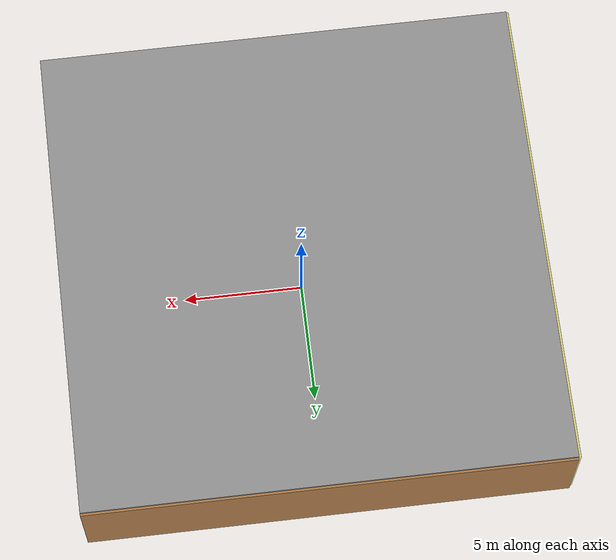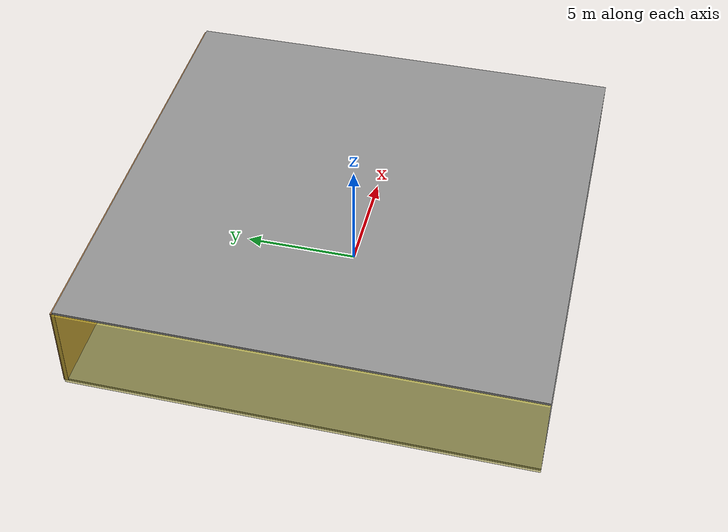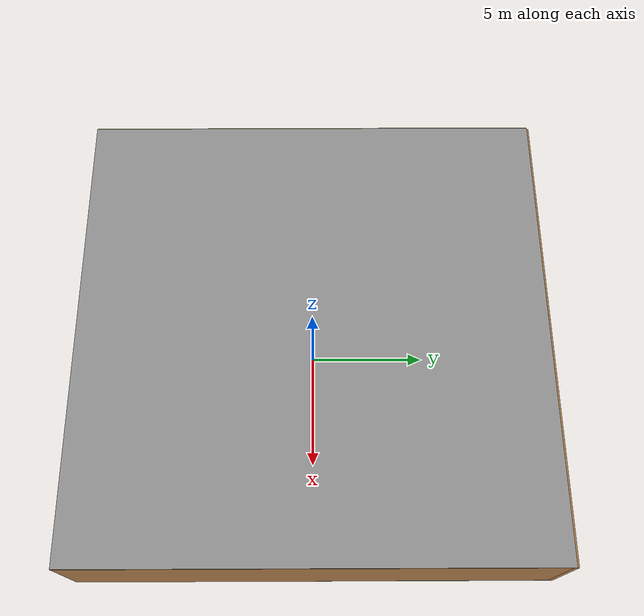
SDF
<sdf version="1.4">
 <world name="default">
  <physics type="ode">
   <max_step_size>0.001</max_step_size>
   <real_time_factor>1</real_time_factor>
   <real_time_update_rate>1000</real_time_update_rate>
   <gravity>0 0 -9.8</gravity>
  </physics>
  <scene><ambient>0.4 0.4 0.4 1</ambient><background>0.7 0.7 0.7 1</background><shadows>1</shadows></scene>
  <model name="Surrounding">
   <static>1</static>
   <link name="Ceiling">
    <collision name="Ceiling_Collision"><geometry><box><size>20 20 0.1</size></box></geometry></collision>
    <visual name="Ceiling_Visual">
     <geometry><box><size>20 20 0.1</size></box></geometry>
     <material>
      <script><uri>file://media/materials/scripts/gazebo.material</uri><name>Gazebo/Grey</name></script>
     </material>
    </visual>
    <pose>0 0 4.05 0 0 0</pose>
   </link>
   <link name="Wall_South">
    <collision name="Wall_South_Collision">
     <geometry><box><size>20 0 4</size></box></geometry>
     <pose>0 0 2 0 -0 0</pose>
    </collision>
    <visual name="Wall_South_Visual">
     <pose>0 0 2 0 -0 0</pose>
     <geometry><box><size>20 0 4</size></box></geometry>
     <material>
      <script><uri>file://media/materials/scripts/gazebo.material</uri><name>Gazebo/JointAnchor</name></script>
     </material>
    </visual>
    <velocity_decay><linear>0</linear><angular>0</angular></velocity_decay>
    <pose>0 -10 0 0 -0 0</pose>
   </link>
   <link name="Wall_East">
    <collision name="Wall_21_Collision">
     <geometry><box><size>20 0 4</size></box></geometry>
     <pose>0 0 2 0 -0 0</pose>
    </collision>
    <visual name="Wall_21_Visual">
     <pose>0 0 2 0 -0 0</pose>
     <geometry><box><size>20 0 4</size></box></geometry>
     <material>
      <script><uri>file://media/materials/scripts/gazebo.material</uri><name>Gazebo/WoodFloor</name></script>
     </material>
    </visual>
    <velocity_decay><linear>0</linear><angular>0</angular></velocity_decay>
    <pose>10 0 0 0 -0 1.5708</pose>
   </link>
   <link name="Wall_North">
    <collision name="Wall_22_Collision">
     <geometry><box><size>20 0.2 4</size></box></geometry>
     <pose>0 0 2 0 -0 0</pose>
    </collision>
    <visual name="Wall_22_Visual">
     <pose>0 0 2 0 -0 0</pose>
     <geometry><box><size>20 0.2 4</size></box></geometry>
     <material>
      <script><uri>file://media/materials/scripts/gazebo.material</uri><name>Gazebo/WoodFloor</name></script>
     </material>
    </visual>
    <velocity_decay><linear>0</linear><angular>0</angular></velocity_decay>
    <pose>0 10 0 0 -0 0</pose>
   </link>
   <link name="Wall_West">
    <collision name="Wall_23_Collision">
     <geometry><box><size>20 0.2 4</size></box></geometry>
     <pose>0 0 2 0 -0 0</pose>
    </collision>
    <visual name="Wall_23_Visual">
     <pose>0 0 2 0 -0 0</pose>
     <geometry><box><size>20 0.2 4</size></box></geometry>
     <material>
      <script>
       <uri>file://media/materials/scripts/gazebo.material</uri>
       <name>Gazebo/YellowTransparent</name>
      </script>
     </material>
    </visual>
    <velocity_decay><linear>0</linear><angular>0</angular></velocity_decay>
    <pose>-10 0 0 0 0 -1.5708</pose>
   </link>
   <link name="Ground_link">
    <collision name="collision">
     <pose>0 0 .05 0 -0 0</pose>
     <geometry><box><size>20 20 0.1</size></box></geometry>
    </collision>
    <visual name="visual">
     <pose>0 0 .05 0 -0 0</pose>
     <geometry><box><size>20 20 0.1</size></box></geometry>
     <material>
      <script><uri>file://media/materials/scripts/gazebo.material</uri><name>Gazebo/Grey</name></script>
     </material>
    </visual>
   </link>
   <static>1</static>
  </model>
  <spherical_coordinates>
   <surface_model>EARTH_WGS84</surface_model>
   <latitude_deg>0</latitude_deg>
   <longitude_deg>0</longitude_deg>
   <elevation>0</elevation>
   <heading_deg>0</heading_deg>
  </spherical_coordinates>
  <light name="lightball_0" type="diffuse">
   <diffuse>0.8 0.8 0.8 1</diffuse>
   <specular>0.2 0.2 0.2 1</specular>
   <attenuation>
    <range>100</range>
    <constant>0.7</constant>
    <linear>0.01</linear>
    <quadratic>0.001</quadratic>
   </attenuation>
   <direction>-0.5 0.1 -0.9</direction>
   <pose>-4.3151186505 -8.71830212181 3.25300623251 0 0 0</pose>
  </light>
  <light name="lightball_1" type="diffuse">
   <diffuse>0.8 0.8 0.8 1</diffuse>
   <specular>0.2 0.2 0.2 1</specular>
   <attenuation>
    <range>100</range>
    <constant>0.7</constant>
    <linear>0.01</linear>
    <quadratic>0.001</quadratic>
   </attenuation>
   <direction>-0.5 0.1 -0.9</direction>
   <pose>7.83836747386 -1.50023800348 1.29087033832 0 0 0</pose>
  </light>
  <light name="lightball_2" type="diffuse">
   <diffuse>0.8 0.8 0.8 1</diffuse>
   <specular>0.2 0.2 0.2 1</specular>
   <attenuation>
    <range>100</range>
    <constant>0.7</constant>
    <linear>0.01</linear>
    <quadratic>0.001</quadratic>
   </attenuation>
   <direction>-0.5 0.1 -0.9</direction>
   <pose>7.62347858959 5.01704595941 2.71965889529 0 0 0</pose>
  </light>
  <light name="lightball_3" type="diffuse">
   <diffuse>0.8 0.8 0.8 1</diffuse>
   <specular>0.2 0.2 0.2 1</specular>
   <attenuation>
    <range>100</range>
    <constant>0.7</constant>
    <linear>0.01</linear>
    <quadratic>0.001</quadratic>
   </attenuation>
   <direction>-0.5 0.1 -0.9</direction>
   <pose>1.20403981946 0.516386427681 1.89430598886 0 0 0</pose>
  </light>
  <include>
   <uri>model://construction_cone</uri>
   <pose>-0.628558144722 -6.53841615253 0 0 0 1.46475779649</pose>
  </include>
  <include>
   <uri>model://textured_shapes</uri>
   <pose>1.83830787618 -2.54816242808 0 0 0 1.16534472069</pose>
  </include>
  <include><uri>model://table</uri><pose>1.81292404762 2.29649558677 0 0 0 2.66667109041</pose></include>
  <include>
   <uri>model://construction_cone</uri>
   <pose>1.95890387202 7.38307955144 0 0 0 2.48784786767</pose>
  </include>
  <include>
   <uri>model://construction_cone</uri>
   <pose>6.61660971919 -4.49983325384 0 0 0 1.05348891601</pose>
  </include>
  <include><uri>model://cabinet</uri><pose>8.62627887219 1.96966622694 0 0 0 0.596331277486</pose></include>
 </world>
</sdf>

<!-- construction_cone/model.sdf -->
<sdf version="1.5">
  <model name="Construction Cone">
    <link name="link">
      <collision name="collision">
        <geometry>
          <mesh>
            <scale>10 10 10</scale>
            <uri>file://isr-testbed/construction_cone/meshes/construction_cone.dae</uri>
          </mesh>
        </geometry>
      </collision>
      <visual name="visual">
        <geometry>
          <mesh>
            <scale>10 10 10</scale>
            <uri>file://isr-testbed/construction_cone/meshes/construction_cone.dae</uri>
          </mesh>
        </geometry>
      </visual>
    </link>
  </model>
</sdf>

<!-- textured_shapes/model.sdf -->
<sdf version="1.6">
  <model name="textured_shapes">
    <pose>0 0 0.5 0 0 0</pose>
    <link name="box">
      <pose>0 -1.5 0 0 0 0</pose>
      <collision name="collision">
        <geometry>
          <box>
            <size>1 1 1</size>
          </box>
        </geometry>
      </collision>
      <visual name="visual">
        <geometry>
          <box>
            <size>1 1 1</size>
          </box>
        </geometry>
        <material>
          <script>
            <uri>model://../model_source/models/textured_shapes/materials/scripts</uri>
            <uri>model://../model_source/models/textured_shapes/materials/textures</uri>
            <name>TexturedShape/Squares</name>
          </script>
        </material>
      </visual>
    </link>
    <link name="sphere">
      <collision name="collision">
        <geometry>
          <sphere>
            <radius>0.5</radius>
          </sphere>
        </geometry>
      </collision>
      <visual name="visual">
        <geometry>
          <sphere>
            <radius>0.5</radius>
          </sphere>
        </geometry>
        <material>
          <script>
            <uri>model://../model_source/models/textured_shapes/materials/scripts</uri>
            <uri>model://../model_source/models/textured_shapes/materials/textures</uri>
            <name>TexturedShape/Squares</name>
          </script>
        </material>
      </visual>
    </link>
    <link name="cylinder">
      <pose>0 1.5 0 0 0 0</pose>
      <collision name="collision">
        <geometry>
          <cylinder>
            <radius>0.5</radius>
            <length>1</length>
          </cylinder>
        </geometry>
      </collision>
      <visual name="visual">
        <geometry>
          <cylinder>
            <radius>0.5</radius>
            <length>1</length>
          </cylinder>
        </geometry>
        <material>
          <script>
            <uri>model://../model_source/models/textured_shapes/materials/scripts</uri>
            <uri>model://../model_source/models/textured_shapes/materials/textures</uri>
            <name>TexturedShape/Squares</name>
          </script>
        </material>
      </visual>
    </link>
  </model>
</sdf>

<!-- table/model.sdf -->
<sdf version="1.5">
  <model name="table">
    <static>true</static>
    <link name="link">
      <collision name="surface">
        <pose>0 0 1.0 0 0 0</pose>
        <geometry>
          <box>
            <size>1.5 0.8 0.03</size>
          </box>
        </geometry>
        <surface>
          <friction>
            <ode>
              <mu>0.6</mu>
              <mu2>0.6</mu2>
            </ode>
          </friction>
        </surface>
      </collision>
      <visual name="visual1">
        <pose>0 0 1.0 0 0 0</pose>
        <geometry>
          <box>
            <size>1.5 0.8 0.03</size>
          </box>
        </geometry>
        <material>
          <script>
            <uri>model://media/materials/scripts/gazebo.material</uri>
            <name>Gazebo/Wood</name>
          </script>
        </material>
      </visual>
      <collision name="front_left_leg">
        <pose>0.68 0.38 0.5 0 0 0</pose>
        <geometry>
          <cylinder>
            <radius>0.02</radius>
            <length>1.0</length>
          </cylinder>
        </geometry>
      </collision>
      <visual name="front_left_leg">
        <pose>0.68 0.38 0.5 0 0 0</pose>
        <geometry>
          <cylinder>
            <radius>0.02</radius>
            <length>1.0</length>
          </cylinder>
        </geometry>
        <material>
          <script>
            <uri>model://media/materials/scripts/gazebo.material</uri>
            <name>Gazebo/Grey</name>
          </script>
        </material>
      </visual>
      <collision name="front_right_leg">
        <pose>0.68 -0.38 0.5 0 0 0</pose>
        <geometry>
          <cylinder>
            <radius>0.02</radius>
            <length>1.0</length>
          </cylinder>
        </geometry>
      </collision>
      <visual name="front_right_leg">
        <pose>0.68 -0.38 0.5 0 0 0</pose>
        <geometry>
          <cylinder>
            <radius>0.02</radius>
            <length>1.0</length>
          </cylinder>
        </geometry>
        <material>
          <script>
            <uri>model://media/materials/scripts/gazebo.material</uri>
            <name>Gazebo/Grey</name>
          </script>
        </material>
      </visual>
      <collision name="back_right_leg">
        <pose>-0.68 -0.38 0.5 0 0 0</pose>
        <geometry>
          <cylinder>
            <radius>0.02</radius>
            <length>1.0</length>
          </cylinder>
        </geometry>
      </collision>
      <visual name="back_right_leg">
        <pose>-0.68 -0.38 0.5 0 0 0</pose>
        <geometry>
          <cylinder>
            <radius>0.02</radius>
            <length>1.0</length>
          </cylinder>
        </geometry>
        <material>
          <script>
            <uri>model://media/materials/scripts/gazebo.material</uri>
            <name>Gazebo/Grey</name>
          </script>
        </material>
      </visual>
      <collision name="back_left_leg">
        <pose>-0.68 0.38 0.5 0 0 0</pose>
        <geometry>
          <cylinder>
            <radius>0.02</radius>
            <length>1.0</length>
          </cylinder>
        </geometry>
      </collision>
      <visual name="back_left_leg">
        <pose>-0.68 0.38 0.5 0 0 0</pose>
        <geometry>
          <cylinder>
            <radius>0.02</radius>
            <length>1.0</length>
          </cylinder>
        </geometry>
        <material>
          <script>
            <uri>model://media/materials/scripts/gazebo.material</uri>
            <name>Gazebo/Grey</name>
          </script>
        </material>
      </visual>
    </link>
  </model>
</sdf>

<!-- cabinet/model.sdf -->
<sdf version="1.5">
  <model name="cabinet">
    <static>true</static>
    <link name="cabinet_bottom_plate">
      <inertial>
        <pose>0 0 -1 0 0 0</pose>
        <inertia>
          <ixx>2.050000</ixx>
          <ixy>0</ixy>
          <ixz>0</ixz>
          <iyy>2.050000</iyy>
          <iyz>0</iyz>
          <izz>2.050000</izz>
        </inertia>
        <mass>25.000000</mass>
      </inertial>
      <collision name="cabinet_bottom_plate_geom">
        <pose>0 0 0.010000 0 0 0</pose>
        <geometry>
          <box>
            <size>0.450000 0.450000 0.020000</size>
          </box>
        </geometry>
      </collision>
      <visual name="cabinet_bottom_plate_geom_visual">
        <pose>0 0 0.010000 0 0 0</pose>
        <geometry>
          <box>
            <size>0.450000 0.450000 0.020000</size>
          </box>
        </geometry>
        <material>
          <script>
            <uri>model://media/materials/scripts/gazebo.material</uri>
            <name>Gazebo/Wood</name>
          </script>
        </material>
      </visual>
      <collision name="cabinet_bottom_plate_geom_cabinet_back_plate">
        <pose>0.235000 0 0.510000 0 0 0</pose>
        <geometry>
          <box>
            <size>0.020000 0.450000 1.020000</size>
          </box>
        </geometry>
      </collision>
      <visual name="cabinet_bottom_plate_geom_cabinet_back_plate_visual">
        <pose>0.235000 0 0.510000 0 0 0</pose>
        <geometry>
          <box>
            <size>0.020000 0.450000 1.020000</size>
          </box>
        </geometry>
        <material>
          <script>
            <uri>model://media/materials/scripts/gazebo.material</uri>
            <name>Gazebo/Wood</name>
          </script>
        </material>
      </visual>
      <collision name="cabinet_bottom_plate_geom_cabinet_left_plate">
        <pose>0 0.235000 0.510000 0 0 0</pose>
        <geometry>
          <box>
            <size>0.450000 0.020000 1.020000</size>
          </box>
        </geometry>
      </collision>
      <visual name="cabinet_bottom_plate_geom_cabinet_left_plate_visual">
        <pose>0 0.235000 0.510000 0 0 0</pose>
        <geometry>
          <box>
            <size>0.450000 0.020000 1.020000</size>
          </box>
        </geometry>
        <material>
          <script>
            <uri>model://media/materials/scripts/gazebo.material</uri>
            <name>Gazebo/Wood</name>
          </script>
        </material>
      </visual>
      <collision name="cabinet_bottom_plate_geom_cabinet_middle_plate">
        <pose>0 0 0.510000 0 0 0</pose>
        <geometry>
          <box>
            <size>0.450000 0.450000 0.020000</size>
          </box>
        </geometry>
      </collision>
      <visual name="cabinet_bottom_plate_geom_cabinet_middle_plate_visual">
        <pose>0 0 0.510000 0 0 0</pose>
        <geometry>
          <box>
            <size>0.450000 0.450000 0.020000</size>
          </box>
        </geometry>
        <material>
          <script>
            <uri>model://media/materials/scripts/gazebo.material</uri>
            <name>Gazebo/Wood</name>
          </script>
        </material>
      </visual>
      <collision name="cabinet_bottom_plate_geom_cabinet_right_plate">
        <pose>0 -0.235000 0.510000 0 0 0</pose>
        <geometry>
          <box>
            <size>0.450000 0.020000 1.020000</size>
          </box>
        </geometry>
      </collision>
      <visual name="cabinet_bottom_plate_geom_cabinet_right_plate_visual">
        <pose>0 -0.235000 0.510000 0 0 0</pose>
        <geometry>
          <box>
            <size>0.450000 0.020000 1.020000</size>
          </box>
        </geometry>
        <material>
          <script>
            <uri>model://media/materials/scripts/gazebo.material</uri>
            <name>Gazebo/Wood</name>
          </script>
        </material>
      </visual>
      <collision name="cabinet_bottom_plate_geom_cabinet_top_plate">
        <pose>0 0 1.010000 0 0 0</pose>
        <geometry>
          <box>
            <size>0.450000 0.450000 0.020000</size>
          </box>
        </geometry>
      </collision>
      <visual name="cabinet_bottom_plate_geom_cabinet_top_plate_visual">
        <pose>0 0 1.010000 0 0 0</pose>
        <geometry>
          <box>
            <size>0.450000 0.450000 0.020000</size>
          </box>
        </geometry>
        <material>
          <script>
            <uri>model://media/materials/scripts/gazebo.material</uri>
            <name>Gazebo/Wood</name>
          </script>
        </material>
      </visual>
    </link>
  </model>
</sdf>
